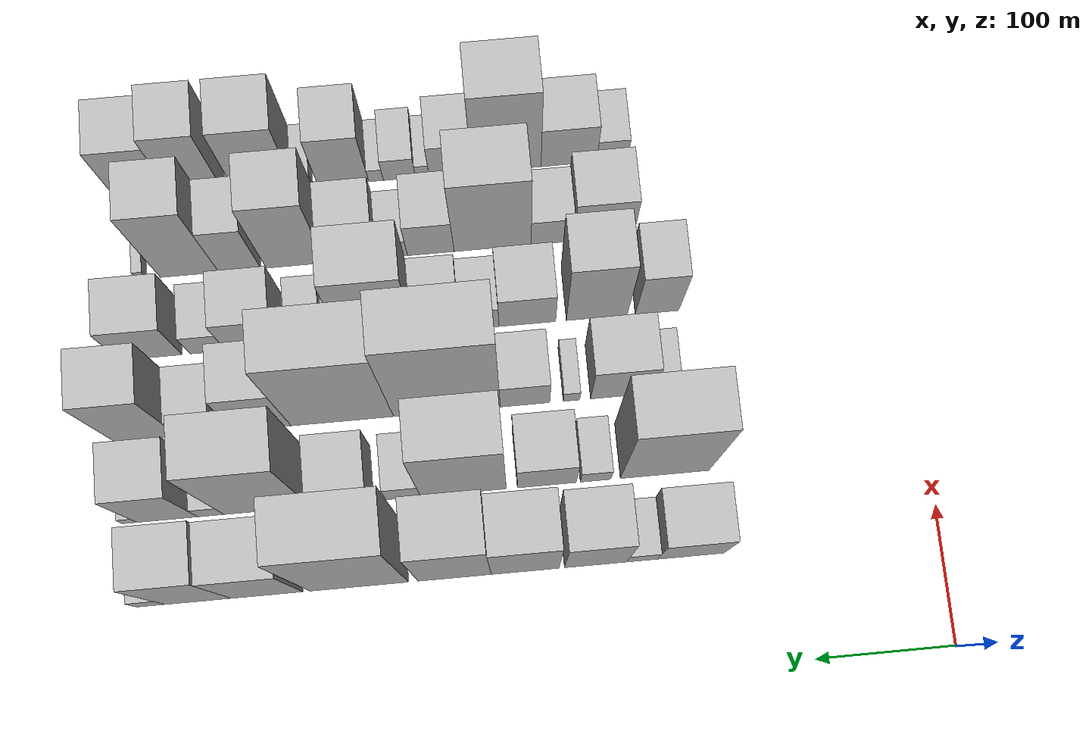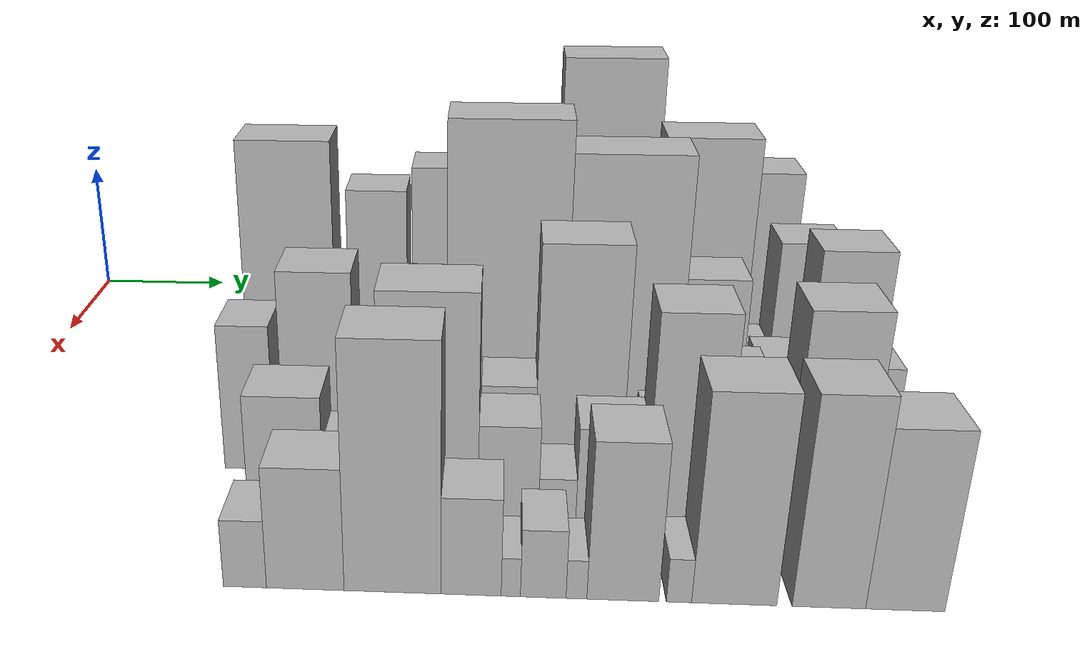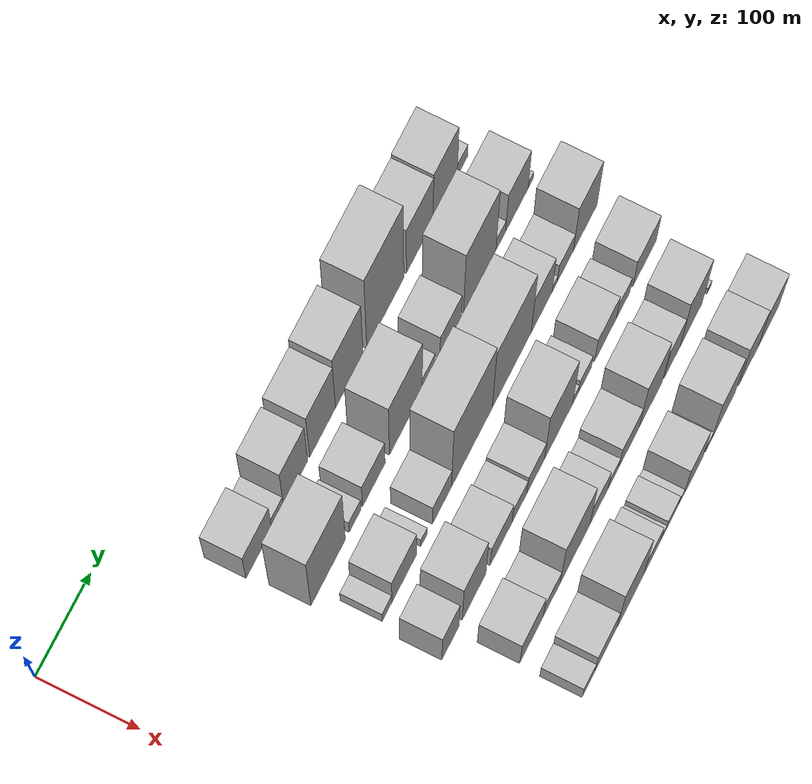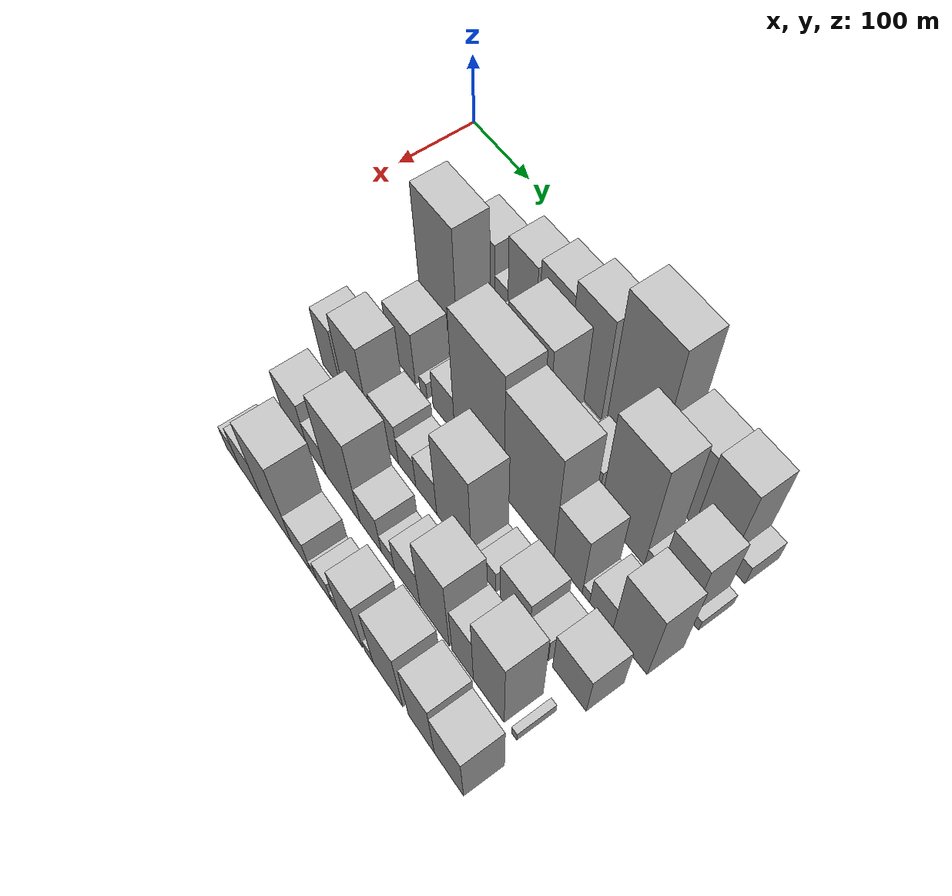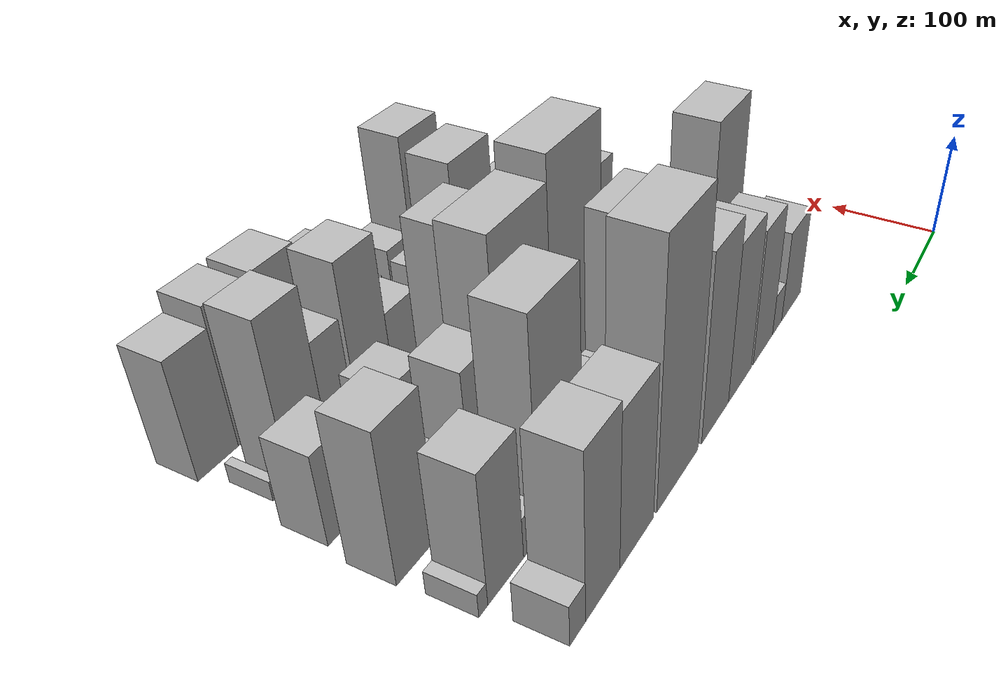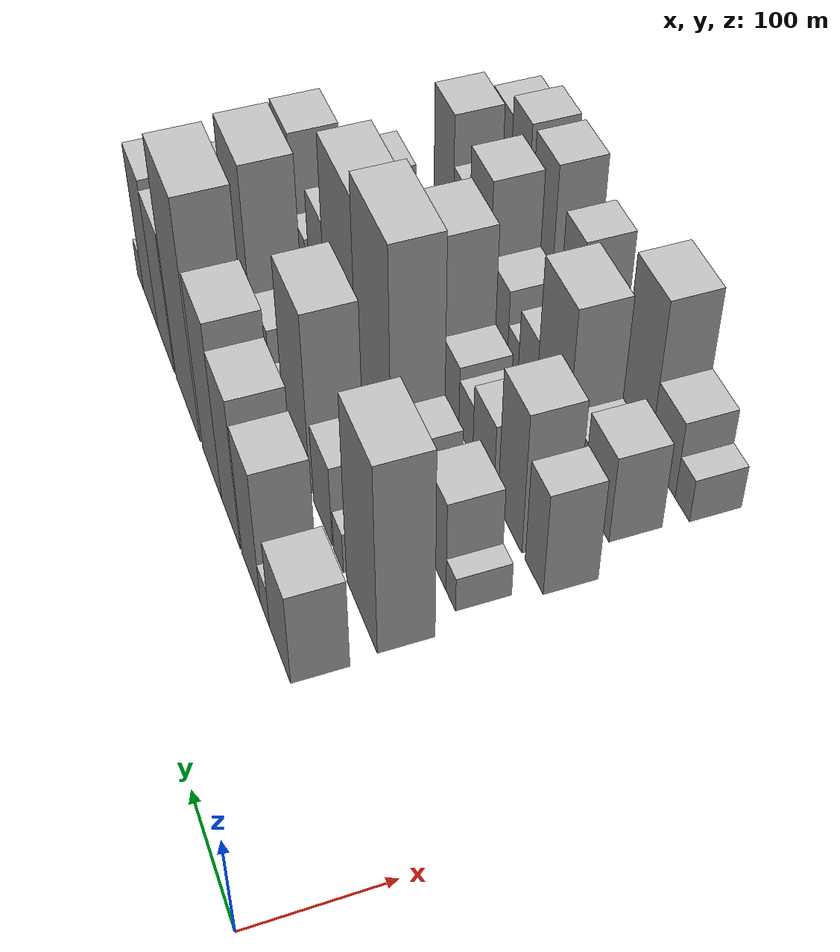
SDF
<sdf version="1.6">
 <world name="default">
  <model name="building_32">
   <static>1</static>
   <pose>100.0000 179.3233 0 0.000000 0.000000 0.000000</pose>
   <link name="link">
    <pose>0 0 43.50 0 0 0</pose>
    <collision name="collision"><geometry><box><size>40.0000 47.6907 87.0000</size></box></geometry></collision>
    <visual name="visual">
     <cast_shadows>0</cast_shadows>
     <geometry><box><size>40.0000 47.6907 87.0000</size></box></geometry>
     <material>
      <script>
       <uri>model://HANNAS_wall/materials/scripts</uri>
       <uri>model://HANNAS_wall/materials/textures</uri>
       <name>vrc/HANNAS_wall</name>
      </script>
     </material>
    </visual>
   </link>
  </model>
  <model name="building_33">
   <static>1</static>
   <pose>100.0000 214.2500 0 0.000000 0.000000 0.000000</pose>
   <link name="link">
    <pose>0 0 19.50 0 0 0</pose>
    <collision name="collision"><geometry><box><size>40.0000 22.1627 39.0000</size></box></geometry></collision>
    <visual name="visual">
     <cast_shadows>0</cast_shadows>
     <geometry><box><size>40.0000 22.1627 39.0000</size></box></geometry>
     <material>
      <script>
       <uri>model://HANNAS_wall/materials/scripts</uri>
       <uri>model://HANNAS_wall/materials/textures</uri>
       <name>vrc/HANNAS_wall</name>
      </script>
     </material>
    </visual>
   </link>
  </model>
  <model name="building_34">
   <static>1</static>
   <pose>100.0000 247.6200 0 0.000000 0.000000 0.000000</pose>
   <link name="link">
    <pose>0 0 63.00 0 0 0</pose>
    <collision name="collision"><geometry><box><size>40.0000 44.5773 126.0000</size></box></geometry></collision>
    <visual name="visual">
     <cast_shadows>0</cast_shadows>
     <geometry><box><size>40.0000 44.5773 126.0000</size></box></geometry>
     <material>
      <script>
       <uri>model://HANNAS_wall/materials/scripts</uri>
       <uri>model://HANNAS_wall/materials/textures</uri>
       <name>vrc/HANNAS_wall</name>
      </script>
     </material>
    </visual>
   </link>
  </model>
  <model name="building_35">
   <static>1</static>
   <pose>100.0000 298.0514 0 0.000000 0.000000 0.000000</pose>
   <link name="link">
    <pose>0 0 72.00 0 0 0</pose>
    <collision name="collision"><geometry><box><size>40.0000 48.2853 144.0000</size></box></geometry></collision>
    <visual name="visual">
     <cast_shadows>0</cast_shadows>
     <geometry><box><size>40.0000 48.2853 144.0000</size></box></geometry>
     <material>
      <script>
       <uri>model://HANNAS_wall/materials/scripts</uri>
       <uri>model://HANNAS_wall/materials/textures</uri>
       <name>vrc/HANNAS_wall</name>
      </script>
     </material>
    </visual>
   </link>
  </model>
  <model name="building_36">
   <static>1</static>
   <pose>100.0000 348.1888 0 0.000000 0.000000 0.000000</pose>
   <link name="link">
    <pose>0 0 84.00 0 0 0</pose>
    <collision name="collision"><geometry><box><size>40.0000 51.9896 168.0000</size></box></geometry></collision>
    <visual name="visual">
     <cast_shadows>0</cast_shadows>
     <geometry><box><size>40.0000 51.9896 168.0000</size></box></geometry>
     <material>
      <script>
       <uri>model://HANNAS_wall/materials/scripts</uri>
       <uri>model://HANNAS_wall/materials/textures</uri>
       <name>vrc/HANNAS_wall</name>
      </script>
     </material>
    </visual>
   </link>
  </model>
  <model name="building_37">
   <static>1</static>
   <pose>100.0000 416.3659 0 0.000000 0.000000 0.000000</pose>
   <link name="link">
    <pose>0 0 112.50 0 0 0</pose>
    <collision name="collision"><geometry><box><size>40.0000 70.3645 225.0000</size></box></geometry></collision>
    <visual name="visual">
     <cast_shadows>0</cast_shadows>
     <geometry><box><size>40.0000 70.3645 225.0000</size></box></geometry>
     <material>
      <script>
       <uri>model://HANNAS_wall/materials/scripts</uri>
       <uri>model://HANNAS_wall/materials/textures</uri>
       <name>vrc/HANNAS_wall</name>
      </script>
     </material>
    </visual>
   </link>
  </model>
  <model name="building_38">
   <static>1</static>
   <pose>100.0000 482.0148 0 0.000000 0.000000 0.000000</pose>
   <link name="link">
    <pose>0 0 67.50 0 0 0</pose>
    <collision name="collision"><geometry><box><size>40.0000 50.9333 135.0000</size></box></geometry></collision>
    <visual name="visual">
     <cast_shadows>0</cast_shadows>
     <geometry><box><size>40.0000 50.9333 135.0000</size></box></geometry>
     <material>
      <script>
       <uri>model://HANNAS_wall/materials/scripts</uri>
       <uri>model://HANNAS_wall/materials/textures</uri>
       <name>vrc/HANNAS_wall</name>
      </script>
     </material>
    </visual>
   </link>
  </model>
  <model name="building_39">
   <static>1</static>
   <pose>100.0000 530.8722 0 0.000000 0.000000 0.000000</pose>
   <link name="link">
    <pose>0 0 72.00 0 0 0</pose>
    <collision name="collision"><geometry><box><size>40.0000 46.7815 144.0000</size></box></geometry></collision>
    <visual name="visual">
     <cast_shadows>0</cast_shadows>
     <geometry><box><size>40.0000 46.7815 144.0000</size></box></geometry>
     <material>
      <script>
       <uri>model://HANNAS_wall/materials/scripts</uri>
       <uri>model://HANNAS_wall/materials/textures</uri>
       <name>vrc/HANNAS_wall</name>
      </script>
     </material>
    </visual>
   </link>
  </model>
  <model name="building_40">
   <static>1</static>
   <pose>100.0000 564.3408 0 0.000000 0.000000 0.000000</pose>
   <link name="link">
    <pose>0 0 18.00 0 0 0</pose>
    <collision name="collision"><geometry><box><size>40.0000 20.1557 36.0000</size></box></geometry></collision>
    <visual name="visual">
     <cast_shadows>0</cast_shadows>
     <geometry><box><size>40.0000 20.1557 36.0000</size></box></geometry>
     <material>
      <script>
       <uri>model://HANNAS_wall/materials/scripts</uri>
       <uri>model://HANNAS_wall/materials/textures</uri>
       <name>vrc/HANNAS_wall</name>
      </script>
     </material>
    </visual>
   </link>
  </model>
  <model name="building_81">
   <static>1</static>
   <pose>160.0000 191.4903 0 0.000000 0.000000 0.000000</pose>
   <link name="link">
    <pose>0 0 90.00 0 0 0</pose>
    <collision name="collision"><geometry><box><size>40.0000 64.2482 180.0000</size></box></geometry></collision>
    <visual name="visual">
     <cast_shadows>0</cast_shadows>
     <geometry><box><size>40.0000 64.2482 180.0000</size></box></geometry>
     <material>
      <script>
       <uri>model://HANNAS_wall/materials/scripts</uri>
       <uri>model://HANNAS_wall/materials/textures</uri>
       <name>vrc/HANNAS_wall</name>
      </script>
     </material>
    </visual>
   </link>
  </model>
  <model name="building_82">
   <static>1</static>
   <pose>160.0000 241.6156 0 0.000000 0.000000 0.000000</pose>
   <link name="link">
    <pose>0 0 19.50 0 0 0</pose>
    <collision name="collision"><geometry><box><size>40.0000 22.0024 39.0000</size></box></geometry></collision>
    <visual name="visual">
     <cast_shadows>0</cast_shadows>
     <geometry><box><size>40.0000 22.0024 39.0000</size></box></geometry>
     <material>
      <script>
       <uri>model://HANNAS_wall/materials/scripts</uri>
       <uri>model://HANNAS_wall/materials/textures</uri>
       <name>vrc/HANNAS_wall</name>
      </script>
     </material>
    </visual>
   </link>
  </model>
  <model name="building_83">
   <static>1</static>
   <pose>160.0000 276.8935 0 0.000000 0.000000 0.000000</pose>
   <link name="link">
    <pose>0 0 39.00 0 0 0</pose>
    <collision name="collision"><geometry><box><size>40.0000 42.5533 78.0000</size></box></geometry></collision>
    <visual name="visual">
     <cast_shadows>0</cast_shadows>
     <geometry><box><size>40.0000 42.5533 78.0000</size></box></geometry>
     <material>
      <script>
       <uri>model://HANNAS_wall/materials/scripts</uri>
       <uri>model://HANNAS_wall/materials/textures</uri>
       <name>vrc/HANNAS_wall</name>
      </script>
     </material>
    </visual>
   </link>
  </model>
  <model name="building_84">
   <static>1</static>
   <pose>160.0000 337.0586 0 0.000000 0.000000 0.000000</pose>
   <link name="link">
    <pose>0 0 85.50 0 0 0</pose>
    <collision name="collision"><geometry><box><size>40.0000 61.7770 171.0000</size></box></geometry></collision>
    <visual name="visual">
     <cast_shadows>0</cast_shadows>
     <geometry><box><size>40.0000 61.7770 171.0000</size></box></geometry>
     <material>
      <script>
       <uri>model://HANNAS_wall/materials/scripts</uri>
       <uri>model://HANNAS_wall/materials/textures</uri>
       <name>vrc/HANNAS_wall</name>
      </script>
     </material>
    </visual>
   </link>
  </model>
  <model name="building_85">
   <static>1</static>
   <pose>160.0000 380.3761 0 0.000000 0.000000 0.000000</pose>
   <link name="link">
    <pose>0 0 24.00 0 0 0</pose>
    <collision name="collision"><geometry><box><size>40.0000 24.8579 48.0000</size></box></geometry></collision>
    <visual name="visual">
     <cast_shadows>0</cast_shadows>
     <geometry><box><size>40.0000 24.8579 48.0000</size></box></geometry>
     <material>
      <script>
       <uri>model://HANNAS_wall/materials/scripts</uri>
       <uri>model://HANNAS_wall/materials/textures</uri>
       <name>vrc/HANNAS_wall</name>
      </script>
     </material>
    </visual>
   </link>
  </model>
  <model name="building_86">
   <static>1</static>
   <pose>160.0000 422.4481 0 0.000000 0.000000 0.000000</pose>
   <link name="link">
    <pose>0 0 36.00 0 0 0</pose>
    <collision name="collision"><geometry><box><size>40.0000 41.2861 72.0000</size></box></geometry></collision>
    <visual name="visual">
     <cast_shadows>0</cast_shadows>
     <geometry><box><size>40.0000 41.2861 72.0000</size></box></geometry>
     <material>
      <script>
       <uri>model://HANNAS_wall/materials/scripts</uri>
       <uri>model://HANNAS_wall/materials/textures</uri>
       <name>vrc/HANNAS_wall</name>
      </script>
     </material>
    </visual>
   </link>
  </model>
  <model name="building_87">
   <static>1</static>
   <pose>160.0000 478.3333 0 0.000000 0.000000 0.000000</pose>
   <link name="link">
    <pose>0 0 93.00 0 0 0</pose>
    <collision name="collision"><geometry><box><size>40.0000 62.4844 186.0000</size></box></geometry></collision>
    <visual name="visual">
     <cast_shadows>0</cast_shadows>
     <geometry><box><size>40.0000 62.4844 186.0000</size></box></geometry>
     <material>
      <script>
       <uri>model://HANNAS_wall/materials/scripts</uri>
       <uri>model://HANNAS_wall/materials/textures</uri>
       <name>vrc/HANNAS_wall</name>
      </script>
     </material>
    </visual>
   </link>
  </model>
  <model name="building_88">
   <static>1</static>
   <pose>160.0000 518.9085 0 0.000000 0.000000 0.000000</pose>
   <link name="link">
    <pose>0 0 18.00 0 0 0</pose>
    <collision name="collision"><geometry><box><size>40.0000 18.6660 36.0000</size></box></geometry></collision>
    <visual name="visual">
     <cast_shadows>0</cast_shadows>
     <geometry><box><size>40.0000 18.6660 36.0000</size></box></geometry>
     <material>
      <script>
       <uri>model://HANNAS_wall/materials/scripts</uri>
       <uri>model://HANNAS_wall/materials/textures</uri>
       <name>vrc/HANNAS_wall</name>
      </script>
     </material>
    </visual>
   </link>
  </model>
  <model name="building_89">
   <static>1</static>
   <pose>160.0000 550.0271 0 0.000000 0.000000 0.000000</pose>
   <link name="link">
    <pose>0 0 57.00 0 0 0</pose>
    <collision name="collision"><geometry><box><size>40.0000 43.5712 114.0000</size></box></geometry></collision>
    <visual name="visual">
     <cast_shadows>0</cast_shadows>
     <geometry><box><size>40.0000 43.5712 114.0000</size></box></geometry>
     <material>
      <script>
       <uri>model://HANNAS_wall/materials/scripts</uri>
       <uri>model://HANNAS_wall/materials/textures</uri>
       <name>vrc/HANNAS_wall</name>
      </script>
     </material>
    </visual>
   </link>
  </model>
  <model name="building_90">
   <static>1</static>
   <pose>160.0000 576.9958 0 0.000000 0.000000 0.000000</pose>
   <link name="link">
    <pose>0 0 10.50 0 0 0</pose>
    <collision name="collision"><geometry><box><size>40.0000 10.3662 21.0000</size></box></geometry></collision>
    <visual name="visual">
     <cast_shadows>0</cast_shadows>
     <geometry><box><size>40.0000 10.3662 21.0000</size></box></geometry>
     <material>
      <script>
       <uri>model://HANNAS_wall/materials/scripts</uri>
       <uri>model://HANNAS_wall/materials/textures</uri>
       <name>vrc/HANNAS_wall</name>
      </script>
     </material>
    </visual>
   </link>
  </model>
  <model name="building_135">
   <static>1</static>
   <pose>220.0000 183.8431 0 0.000000 0.000000 0.000000</pose>
   <link name="link">
    <pose>0 0 16.50 0 0 0</pose>
    <collision name="collision"><geometry><box><size>40.0000 18.2643 33.0000</size></box></geometry></collision>
    <visual name="visual">
     <cast_shadows>0</cast_shadows>
     <geometry><box><size>40.0000 18.2643 33.0000</size></box></geometry>
     <material>
      <script>
       <uri>model://HANNAS_wall/materials/scripts</uri>
       <uri>model://HANNAS_wall/materials/textures</uri>
       <name>vrc/HANNAS_wall</name>
      </script>
     </material>
    </visual>
   </link>
  </model>
  <model name="building_136">
   <static>1</static>
   <pose>220.0000 216.0808 0 0.000000 0.000000 0.000000</pose>
   <link name="link">
    <pose>0 0 43.50 0 0 0</pose>
    <collision name="collision"><geometry><box><size>40.0000 46.2111 87.0000</size></box></geometry></collision>
    <visual name="visual">
     <cast_shadows>0</cast_shadows>
     <geometry><box><size>40.0000 46.2111 87.0000</size></box></geometry>
     <material>
      <script>
       <uri>model://HANNAS_wall/materials/scripts</uri>
       <uri>model://HANNAS_wall/materials/textures</uri>
       <name>vrc/HANNAS_wall</name>
      </script>
     </material>
    </visual>
   </link>
  </model>
  <model name="building_137">
   <static>1</static>
   <pose>220.0000 253.1906 0 0.000000 0.000000 0.000000</pose>
   <link name="link">
    <pose>0 0 13.50 0 0 0</pose>
    <collision name="collision"><geometry><box><size>40.0000 12.0085 27.0000</size></box></geometry></collision>
    <visual name="visual">
     <cast_shadows>0</cast_shadows>
     <geometry><box><size>40.0000 12.0085 27.0000</size></box></geometry>
     <material>
      <script>
       <uri>model://HANNAS_wall/materials/scripts</uri>
       <uri>model://HANNAS_wall/materials/textures</uri>
       <name>vrc/HANNAS_wall</name>
      </script>
     </material>
    </visual>
   </link>
  </model>
  <model name="building_138">
   <static>1</static>
   <pose>220.0000 287.1813 0 0.000000 0.000000 0.000000</pose>
   <link name="link">
    <pose>0 0 33.00 0 0 0</pose>
    <collision name="collision"><geometry><box><size>40.0000 35.9730 66.0000</size></box></geometry></collision>
    <visual name="visual">
     <cast_shadows>0</cast_shadows>
     <geometry><box><size>40.0000 35.9730 66.0000</size></box></geometry>
     <material>
      <script>
       <uri>model://HANNAS_wall/materials/scripts</uri>
       <uri>model://HANNAS_wall/materials/textures</uri>
       <name>vrc/HANNAS_wall</name>
      </script>
     </material>
    </visual>
   </link>
  </model>
  <model name="building_139">
   <static>1</static>
   <pose>220.0000 344.0933 0 0.000000 0.000000 0.000000</pose>
   <link name="link">
    <pose>0 0 106.50 0 0 0</pose>
    <collision name="collision"><geometry><box><size>40.0000 77.8511 213.0000</size></box></geometry></collision>
    <visual name="visual">
     <cast_shadows>0</cast_shadows>
     <geometry><box><size>40.0000 77.8511 213.0000</size></box></geometry>
     <material>
      <script>
       <uri>model://HANNAS_wall/materials/scripts</uri>
       <uri>model://HANNAS_wall/materials/textures</uri>
       <name>vrc/HANNAS_wall</name>
      </script>
     </material>
    </visual>
   </link>
  </model>
  <model name="building_140">
   <static>1</static>
   <pose>220.0000 420.3339 0 0.000000 0.000000 0.000000</pose>
   <link name="link">
    <pose>0 0 96.00 0 0 0</pose>
    <collision name="collision"><geometry><box><size>40.0000 74.6301 192.0000</size></box></geometry></collision>
    <visual name="visual">
     <cast_shadows>0</cast_shadows>
     <geometry><box><size>40.0000 74.6301 192.0000</size></box></geometry>
     <material>
      <script>
       <uri>model://HANNAS_wall/materials/scripts</uri>
       <uri>model://HANNAS_wall/materials/textures</uri>
       <name>vrc/HANNAS_wall</name>
      </script>
     </material>
    </visual>
   </link>
  </model>
  <model name="building_141">
   <static>1</static>
   <pose>220.0000 477.7974 0 0.000000 0.000000 0.000000</pose>
   <link name="link">
    <pose>0 0 55.50 0 0 0</pose>
    <collision name="collision"><geometry><box><size>40.0000 40.2968 111.0000</size></box></geometry></collision>
    <visual name="visual">
     <cast_shadows>0</cast_shadows>
     <geometry><box><size>40.0000 40.2968 111.0000</size></box></geometry>
     <material>
      <script>
       <uri>model://HANNAS_wall/materials/scripts</uri>
       <uri>model://HANNAS_wall/materials/textures</uri>
       <name>vrc/HANNAS_wall</name>
      </script>
     </material>
    </visual>
   </link>
  </model>
  <model name="building_142">
   <static>1</static>
   <pose>220.0000 503.0956 0 0.000000 0.000000 0.000000</pose>
   <link name="link">
    <pose>0 0 10.50 0 0 0</pose>
    <collision name="collision"><geometry><box><size>40.0000 10.2998 21.0000</size></box></geometry></collision>
    <visual name="visual">
     <cast_shadows>0</cast_shadows>
     <geometry><box><size>40.0000 10.2998 21.0000</size></box></geometry>
     <material>
      <script>
       <uri>model://HANNAS_wall/materials/scripts</uri>
       <uri>model://HANNAS_wall/materials/textures</uri>
       <name>vrc/HANNAS_wall</name>
      </script>
     </material>
    </visual>
   </link>
  </model>
  <model name="building_143">
   <static>1</static>
   <pose>220.0000 523.9078 0 0.000000 0.000000 0.000000</pose>
   <link name="link">
    <pose>0 0 27.00 0 0 0</pose>
    <collision name="collision"><geometry><box><size>40.0000 31.3245 54.0000</size></box></geometry></collision>
    <visual name="visual">
     <cast_shadows>0</cast_shadows>
     <geometry><box><size>40.0000 31.3245 54.0000</size></box></geometry>
     <material>
      <script>
       <uri>model://HANNAS_wall/materials/scripts</uri>
       <uri>model://HANNAS_wall/materials/textures</uri>
       <name>vrc/HANNAS_wall</name>
      </script>
     </material>
    </visual>
   </link>
  </model>
  <model name="building_144">
   <static>1</static>
   <pose>220.0000 562.6455 0 0.000000 0.000000 0.000000</pose>
   <link name="link">
    <pose>0 0 66.00 0 0 0</pose>
    <collision name="collision"><geometry><box><size>40.0000 46.1511 132.0000</size></box></geometry></collision>
    <visual name="visual">
     <cast_shadows>0</cast_shadows>
     <geometry><box><size>40.0000 46.1511 132.0000</size></box></geometry>
     <material>
      <script>
       <uri>model://HANNAS_wall/materials/scripts</uri>
       <uri>model://HANNAS_wall/materials/textures</uri>
       <name>vrc/HANNAS_wall</name>
      </script>
     </material>
    </visual>
   </link>
  </model>
  <model name="building_186">
   <static>1</static>
   <pose>280.0000 183.9929 0 0.000000 0.000000 0.000000</pose>
   <link name="link">
    <pose>0 0 49.50 0 0 0</pose>
    <collision name="collision"><geometry><box><size>40.0000 32.1871 99.0000</size></box></geometry></collision>
    <visual name="visual">
     <cast_shadows>0</cast_shadows>
     <geometry><box><size>40.0000 32.1871 99.0000</size></box></geometry>
     <material>
      <script>
       <uri>model://HANNAS_wall/materials/scripts</uri>
       <uri>model://HANNAS_wall/materials/textures</uri>
       <name>vrc/HANNAS_wall</name>
      </script>
     </material>
    </visual>
   </link>
  </model>
  <model name="building_187">
   <static>1</static>
   <pose>280.0000 228.5905 0 0.000000 0.000000 0.000000</pose>
   <link name="link">
    <pose>0 0 67.50 0 0 0</pose>
    <collision name="collision"><geometry><box><size>40.0000 45.0080 135.0000</size></box></geometry></collision>
    <visual name="visual">
     <cast_shadows>0</cast_shadows>
     <geometry><box><size>40.0000 45.0080 135.0000</size></box></geometry>
     <material>
      <script>
       <uri>model://HANNAS_wall/materials/scripts</uri>
       <uri>model://HANNAS_wall/materials/textures</uri>
       <name>vrc/HANNAS_wall</name>
      </script>
     </material>
    </visual>
   </link>
  </model>
  <model name="building_188">
   <static>1</static>
   <pose>280.0000 279.9488 0 0.000000 0.000000 0.000000</pose>
   <link name="link">
    <pose>0 0 36.00 0 0 0</pose>
    <collision name="collision"><geometry><box><size>40.0000 41.7085 72.0000</size></box></geometry></collision>
    <visual name="visual">
     <cast_shadows>0</cast_shadows>
     <geometry><box><size>40.0000 41.7085 72.0000</size></box></geometry>
     <material>
      <script>
       <uri>model://HANNAS_wall/materials/scripts</uri>
       <uri>model://HANNAS_wall/materials/textures</uri>
       <name>vrc/HANNAS_wall</name>
      </script>
     </material>
    </visual>
   </link>
  </model>
  <model name="building_189">
   <static>1</static>
   <pose>280.0000 314.9411 0 0.000000 0.000000 0.000000</pose>
   <link name="link">
    <pose>0 0 25.50 0 0 0</pose>
    <collision name="collision"><geometry><box><size>40.0000 28.2761 51.0000</size></box></geometry></collision>
    <visual name="visual">
     <cast_shadows>0</cast_shadows>
     <geometry><box><size>40.0000 28.2761 51.0000</size></box></geometry>
     <material>
      <script>
       <uri>model://HANNAS_wall/materials/scripts</uri>
       <uri>model://HANNAS_wall/materials/textures</uri>
       <name>vrc/HANNAS_wall</name>
      </script>
     </material>
    </visual>
   </link>
  </model>
  <model name="building_190">
   <static>1</static>
   <pose>280.0000 345.9655 0 0.000000 0.000000 0.000000</pose>
   <link name="link">
    <pose>0 0 31.50 0 0 0</pose>
    <collision name="collision"><geometry><box><size>40.0000 33.7728 63.0000</size></box></geometry></collision>
    <visual name="visual">
     <cast_shadows>0</cast_shadows>
     <geometry><box><size>40.0000 33.7728 63.0000</size></box></geometry>
     <material>
      <script>
       <uri>model://HANNAS_wall/materials/scripts</uri>
       <uri>model://HANNAS_wall/materials/textures</uri>
       <name>vrc/HANNAS_wall</name>
      </script>
     </material>
    </visual>
   </link>
  </model>
  <model name="building_191">
   <static>1</static>
   <pose>280.0000 389.7515 0 0.000000 0.000000 0.000000</pose>
   <link name="link">
    <pose>0 0 78.00 0 0 0</pose>
    <collision name="collision"><geometry><box><size>40.0000 53.7992 156.0000</size></box></geometry></collision>
    <visual name="visual">
     <cast_shadows>0</cast_shadows>
     <geometry><box><size>40.0000 53.7992 156.0000</size></box></geometry>
     <material>
      <script>
       <uri>model://HANNAS_wall/materials/scripts</uri>
       <uri>model://HANNAS_wall/materials/textures</uri>
       <name>vrc/HANNAS_wall</name>
      </script>
     </material>
    </visual>
   </link>
  </model>
  <model name="building_192">
   <static>1</static>
   <pose>280.0000 422.5704 0 0.000000 0.000000 0.000000</pose>
   <link name="link">
    <pose>0 0 13.50 0 0 0</pose>
    <collision name="collision"><geometry><box><size>40.0000 11.8384 27.0000</size></box></geometry></collision>
    <visual name="visual">
     <cast_shadows>0</cast_shadows>
     <geometry><box><size>40.0000 11.8384 27.0000</size></box></geometry>
     <material>
      <script>
       <uri>model://HANNAS_wall/materials/scripts</uri>
       <uri>model://HANNAS_wall/materials/textures</uri>
       <name>vrc/HANNAS_wall</name>
      </script>
     </material>
    </visual>
   </link>
  </model>
  <model name="building_193">
   <static>1</static>
   <pose>280.0000 440.8804 0 0.000000 0.000000 0.000000</pose>
   <link name="link">
    <pose>0 0 21.00 0 0 0</pose>
    <collision name="collision"><geometry><box><size>40.0000 24.7818 42.0000</size></box></geometry></collision>
    <visual name="visual">
     <cast_shadows>0</cast_shadows>
     <geometry><box><size>40.0000 24.7818 42.0000</size></box></geometry>
     <material>
      <script>
       <uri>model://HANNAS_wall/materials/scripts</uri>
       <uri>model://HANNAS_wall/materials/textures</uri>
       <name>vrc/HANNAS_wall</name>
      </script>
     </material>
    </visual>
   </link>
  </model>
  <model name="building_194">
   <static>1</static>
   <pose>280.0000 480.5789 0 0.000000 0.000000 0.000000</pose>
   <link name="link">
    <pose>0 0 37.50 0 0 0</pose>
    <collision name="collision"><geometry><box><size>40.0000 42.6153 75.0000</size></box></geometry></collision>
    <visual name="visual">
     <cast_shadows>0</cast_shadows>
     <geometry><box><size>40.0000 42.6153 75.0000</size></box></geometry>
     <material>
      <script>
       <uri>model://HANNAS_wall/materials/scripts</uri>
       <uri>model://HANNAS_wall/materials/textures</uri>
       <name>vrc/HANNAS_wall</name>
      </script>
     </material>
    </visual>
   </link>
  </model>
  <model name="building_195">
   <static>1</static>
   <pose>280.0000 514.9547 0 0.000000 0.000000 0.000000</pose>
   <link name="link">
    <pose>0 0 24.00 0 0 0</pose>
    <collision name="collision"><geometry><box><size>40.0000 26.1362 48.0000</size></box></geometry></collision>
    <visual name="visual">
     <cast_shadows>0</cast_shadows>
     <geometry><box><size>40.0000 26.1362 48.0000</size></box></geometry>
     <material>
      <script>
       <uri>model://HANNAS_wall/materials/scripts</uri>
       <uri>model://HANNAS_wall/materials/textures</uri>
       <name>vrc/HANNAS_wall</name>
      </script>
     </material>
    </visual>
   </link>
  </model>
  <model name="building_196">
   <static>1</static>
   <pose>280.0000 556.8604 0 0.000000 0.000000 0.000000</pose>
   <link name="link">
    <pose>0 0 40.50 0 0 0</pose>
    <collision name="collision"><geometry><box><size>40.0000 45.6753 81.0000</size></box></geometry></collision>
    <visual name="visual">
     <cast_shadows>0</cast_shadows>
     <geometry><box><size>40.0000 45.6753 81.0000</size></box></geometry>
     <material>
      <script>
       <uri>model://HANNAS_wall/materials/scripts</uri>
       <uri>model://HANNAS_wall/materials/textures</uri>
       <name>vrc/HANNAS_wall</name>
      </script>
     </material>
    </visual>
   </link>
  </model>
  <model name="building_236">
   <static>1</static>
   <pose>340.0000 217.3896 0 0.000000 0.000000 0.000000</pose>
   <link name="link">
    <pose>0 0 42.00 0 0 0</pose>
    <collision name="collision"><geometry><box><size>40.0000 44.5408 84.0000</size></box></geometry></collision>
    <visual name="visual">
     <cast_shadows>0</cast_shadows>
     <geometry><box><size>40.0000 44.5408 84.0000</size></box></geometry>
     <material>
      <script>
       <uri>model://HANNAS_wall/materials/scripts</uri>
       <uri>model://HANNAS_wall/materials/textures</uri>
       <name>vrc/HANNAS_wall</name>
      </script>
     </material>
    </visual>
   </link>
  </model>
  <model name="building_237">
   <static>1</static>
   <pose>340.0000 255.6008 0 0.000000 0.000000 0.000000</pose>
   <link name="link">
    <pose>0 0 27.00 0 0 0</pose>
    <collision name="collision"><geometry><box><size>40.0000 31.8815 54.0000</size></box></geometry></collision>
    <visual name="visual">
     <cast_shadows>0</cast_shadows>
     <geometry><box><size>40.0000 31.8815 54.0000</size></box></geometry>
     <material>
      <script>
       <uri>model://HANNAS_wall/materials/scripts</uri>
       <uri>model://HANNAS_wall/materials/textures</uri>
       <name>vrc/HANNAS_wall</name>
      </script>
     </material>
    </visual>
   </link>
  </model>
  <model name="building_238">
   <static>1</static>
   <pose>340.0000 300.2467 0 0.000000 0.000000 0.000000</pose>
   <link name="link">
    <pose>0 0 75.00 0 0 0</pose>
    <collision name="collision"><geometry><box><size>40.0000 57.4104 150.0000</size></box></geometry></collision>
    <visual name="visual">
     <cast_shadows>0</cast_shadows>
     <geometry><box><size>40.0000 57.4104 150.0000</size></box></geometry>
     <material>
      <script>
       <uri>model://HANNAS_wall/materials/scripts</uri>
       <uri>model://HANNAS_wall/materials/textures</uri>
       <name>vrc/HANNAS_wall</name>
      </script>
     </material>
    </visual>
   </link>
  </model>
  <model name="building_239">
   <static>1</static>
   <pose>340.0000 346.3393 0 0.000000 0.000000 0.000000</pose>
   <link name="link">
    <pose>0 0 34.50 0 0 0</pose>
    <collision name="collision"><geometry><box><size>40.0000 34.7748 69.0000</size></box></geometry></collision>
    <visual name="visual">
     <cast_shadows>0</cast_shadows>
     <geometry><box><size>40.0000 34.7748 69.0000</size></box></geometry>
     <material>
      <script>
       <uri>model://HANNAS_wall/materials/scripts</uri>
       <uri>model://HANNAS_wall/materials/textures</uri>
       <name>vrc/HANNAS_wall</name>
      </script>
     </material>
    </visual>
   </link>
  </model>
  <model name="building_240">
   <static>1</static>
   <pose>340.0000 374.4345 0 0.000000 0.000000 0.000000</pose>
   <link name="link">
    <pose>0 0 18.00 0 0 0</pose>
    <collision name="collision"><geometry><box><size>40.0000 21.4154 36.0000</size></box></geometry></collision>
    <visual name="visual">
     <cast_shadows>0</cast_shadows>
     <geometry><box><size>40.0000 21.4154 36.0000</size></box></geometry>
     <material>
      <script>
       <uri>model://HANNAS_wall/materials/scripts</uri>
       <uri>model://HANNAS_wall/materials/textures</uri>
       <name>vrc/HANNAS_wall</name>
      </script>
     </material>
    </visual>
   </link>
  </model>
  <model name="building_241">
   <static>1</static>
   <pose>340.0000 404.9297 0 0.000000 0.000000 0.000000</pose>
   <link name="link">
    <pose>0 0 34.50 0 0 0</pose>
    <collision name="collision"><geometry><box><size>40.0000 39.5750 69.0000</size></box></geometry></collision>
    <visual name="visual">
     <cast_shadows>0</cast_shadows>
     <geometry><box><size>40.0000 39.5750 69.0000</size></box></geometry>
     <material>
      <script>
       <uri>model://HANNAS_wall/materials/scripts</uri>
       <uri>model://HANNAS_wall/materials/textures</uri>
       <name>vrc/HANNAS_wall</name>
      </script>
     </material>
    </visual>
   </link>
  </model>
  <model name="building_242">
   <static>1</static>
   <pose>340.0000 446.7631 0 0.000000 0.000000 0.000000</pose>
   <link name="link">
    <pose>0 0 70.50 0 0 0</pose>
    <collision name="collision"><geometry><box><size>40.0000 44.0918 141.0000</size></box></geometry></collision>
    <visual name="visual">
     <cast_shadows>0</cast_shadows>
     <geometry><box><size>40.0000 44.0918 141.0000</size></box></geometry>
     <material>
      <script>
       <uri>model://HANNAS_wall/materials/scripts</uri>
       <uri>model://HANNAS_wall/materials/textures</uri>
       <name>vrc/HANNAS_wall</name>
      </script>
     </material>
    </visual>
   </link>
  </model>
  <model name="building_243">
   <static>1</static>
   <pose>340.0000 488.3579 0 0.000000 0.000000 0.000000</pose>
   <link name="link">
    <pose>0 0 48.00 0 0 0</pose>
    <collision name="collision"><geometry><box><size>40.0000 31.0978 96.0000</size></box></geometry></collision>
    <visual name="visual">
     <cast_shadows>0</cast_shadows>
     <geometry><box><size>40.0000 31.0978 96.0000</size></box></geometry>
     <material>
      <script>
       <uri>model://HANNAS_wall/materials/scripts</uri>
       <uri>model://HANNAS_wall/materials/textures</uri>
       <name>vrc/HANNAS_wall</name>
      </script>
     </material>
    </visual>
   </link>
  </model>
  <model name="building_244">
   <static>1</static>
   <pose>340.0000 525.6491 0 0.000000 0.000000 0.000000</pose>
   <link name="link">
    <pose>0 0 72.00 0 0 0</pose>
    <collision name="collision"><geometry><box><size>40.0000 43.4846 144.0000</size></box></geometry></collision>
    <visual name="visual">
     <cast_shadows>0</cast_shadows>
     <geometry><box><size>40.0000 43.4846 144.0000</size></box></geometry>
     <material>
      <script>
       <uri>model://HANNAS_wall/materials/scripts</uri>
       <uri>model://HANNAS_wall/materials/textures</uri>
       <name>vrc/HANNAS_wall</name>
      </script>
     </material>
    </visual>
   </link>
  </model>
  <model name="building_245">
   <static>1</static>
   <pose>340.0000 561.1694 0 0.000000 0.000000 0.000000</pose>
   <link name="link">
    <pose>0 0 9.00 0 0 0</pose>
    <collision name="collision"><geometry><box><size>40.0000 7.5560 18.0000</size></box></geometry></collision>
    <visual name="visual">
     <cast_shadows>0</cast_shadows>
     <geometry><box><size>40.0000 7.5560 18.0000</size></box></geometry>
     <material>
      <script>
       <uri>model://HANNAS_wall/materials/scripts</uri>
       <uri>model://HANNAS_wall/materials/textures</uri>
       <name>vrc/HANNAS_wall</name>
      </script>
     </material>
    </visual>
   </link>
  </model>
  <model name="building_289">
   <static>1</static>
   <pose>400.0000 204.8551 0 0.000000 0.000000 0.000000</pose>
   <link name="link">
    <pose>0 0 21.00 0 0 0</pose>
    <collision name="collision"><geometry><box><size>40.0000 23.4554 42.0000</size></box></geometry></collision>
    <visual name="visual">
     <cast_shadows>0</cast_shadows>
     <geometry><box><size>40.0000 23.4554 42.0000</size></box></geometry>
     <material>
      <script>
       <uri>model://HANNAS_wall/materials/scripts</uri>
       <uri>model://HANNAS_wall/materials/textures</uri>
       <name>vrc/HANNAS_wall</name>
      </script>
     </material>
    </visual>
   </link>
  </model>
  <model name="building_290">
   <static>1</static>
   <pose>400.0000 237.6139 0 0.000000 0.000000 0.000000</pose>
   <link name="link">
    <pose>0 0 37.50 0 0 0</pose>
    <collision name="collision"><geometry><box><size>40.0000 42.0622 75.0000</size></box></geometry></collision>
    <visual name="visual">
     <cast_shadows>0</cast_shadows>
     <geometry><box><size>40.0000 42.0622 75.0000</size></box></geometry>
     <material>
      <script>
       <uri>model://HANNAS_wall/materials/scripts</uri>
       <uri>model://HANNAS_wall/materials/textures</uri>
       <name>vrc/HANNAS_wall</name>
      </script>
     </material>
    </visual>
   </link>
  </model>
  <model name="building_291">
   <static>1</static>
   <pose>400.0000 284.6914 0 0.000000 0.000000 0.000000</pose>
   <link name="link">
    <pose>0 0 75.00 0 0 0</pose>
    <collision name="collision"><geometry><box><size>40.0000 52.0929 150.0000</size></box></geometry></collision>
    <visual name="visual">
     <cast_shadows>0</cast_shadows>
     <geometry><box><size>40.0000 52.0929 150.0000</size></box></geometry>
     <material>
      <script>
       <uri>model://HANNAS_wall/materials/scripts</uri>
       <uri>model://HANNAS_wall/materials/textures</uri>
       <name>vrc/HANNAS_wall</name>
      </script>
     </material>
    </visual>
   </link>
  </model>
  <model name="building_292">
   <static>1</static>
   <pose>400.0000 326.8256 0 0.000000 0.000000 0.000000</pose>
   <link name="link">
    <pose>0 0 30.00 0 0 0</pose>
    <collision name="collision"><geometry><box><size>40.0000 32.1755 60.0000</size></box></geometry></collision>
    <visual name="visual">
     <cast_shadows>0</cast_shadows>
     <geometry><box><size>40.0000 32.1755 60.0000</size></box></geometry>
     <material>
      <script>
       <uri>model://HANNAS_wall/materials/scripts</uri>
       <uri>model://HANNAS_wall/materials/textures</uri>
       <name>vrc/HANNAS_wall</name>
      </script>
     </material>
    </visual>
   </link>
  </model>
  <model name="building_293">
   <static>1</static>
   <pose>400.0000 348.0325 0 0.000000 0.000000 0.000000</pose>
   <link name="link">
    <pose>0 0 12.00 0 0 0</pose>
    <collision name="collision"><geometry><box><size>40.0000 10.2382 24.0000</size></box></geometry></collision>
    <visual name="visual">
     <cast_shadows>0</cast_shadows>
     <geometry><box><size>40.0000 10.2382 24.0000</size></box></geometry>
     <material>
      <script>
       <uri>model://HANNAS_wall/materials/scripts</uri>
       <uri>model://HANNAS_wall/materials/textures</uri>
       <name>vrc/HANNAS_wall</name>
      </script>
     </material>
    </visual>
   </link>
  </model>
  <model name="building_294">
   <static>1</static>
   <pose>400.0000 365.2624 0 0.000000 0.000000 0.000000</pose>
   <link name="link">
    <pose>0 0 21.00 0 0 0</pose>
    <collision name="collision"><geometry><box><size>40.0000 24.2217 42.0000</size></box></geometry></collision>
    <visual name="visual">
     <cast_shadows>0</cast_shadows>
     <geometry><box><size>40.0000 24.2217 42.0000</size></box></geometry>
     <material>
      <script>
       <uri>model://HANNAS_wall/materials/scripts</uri>
       <uri>model://HANNAS_wall/materials/textures</uri>
       <name>vrc/HANNAS_wall</name>
      </script>
     </material>
    </visual>
   </link>
  </model>
  <model name="building_295">
   <static>1</static>
   <pose>400.0000 382.8856 0 0.000000 0.000000 0.000000</pose>
   <link name="link">
    <pose>0 0 12.00 0 0 0</pose>
    <collision name="collision"><geometry><box><size>40.0000 11.0247 24.0000</size></box></geometry></collision>
    <visual name="visual">
     <cast_shadows>0</cast_shadows>
     <geometry><box><size>40.0000 11.0247 24.0000</size></box></geometry>
     <material>
      <script>
       <uri>model://HANNAS_wall/materials/scripts</uri>
       <uri>model://HANNAS_wall/materials/textures</uri>
       <name>vrc/HANNAS_wall</name>
      </script>
     </material>
    </visual>
   </link>
  </model>
  <model name="building_296">
   <static>1</static>
   <pose>400.0000 407.3841 0 0.000000 0.000000 0.000000</pose>
   <link name="link">
    <pose>0 0 48.00 0 0 0</pose>
    <collision name="collision"><geometry><box><size>40.0000 37.9723 96.0000</size></box></geometry></collision>
    <visual name="visual">
     <cast_shadows>0</cast_shadows>
     <geometry><box><size>40.0000 37.9723 96.0000</size></box></geometry>
     <material>
      <script>
       <uri>model://HANNAS_wall/materials/scripts</uri>
       <uri>model://HANNAS_wall/materials/textures</uri>
       <name>vrc/HANNAS_wall</name>
      </script>
     </material>
    </visual>
   </link>
  </model>
  <model name="building_297">
   <static>1</static>
   <pose>400.0000 436.9791 0 0.000000 0.000000 0.000000</pose>
   <link name="link">
    <pose>0 0 13.50 0 0 0</pose>
    <collision name="collision"><geometry><box><size>40.0000 13.2177 27.0000</size></box></geometry></collision>
    <visual name="visual">
     <cast_shadows>0</cast_shadows>
     <geometry><box><size>40.0000 13.2177 27.0000</size></box></geometry>
     <material>
      <script>
       <uri>model://HANNAS_wall/materials/scripts</uri>
       <uri>model://HANNAS_wall/materials/textures</uri>
       <name>vrc/HANNAS_wall</name>
      </script>
     </material>
    </visual>
   </link>
  </model>
  <model name="building_298">
   <static>1</static>
   <pose>400.0000 465.8408 0 0.000000 0.000000 0.000000</pose>
   <link name="link">
    <pose>0 0 63.00 0 0 0</pose>
    <collision name="collision"><geometry><box><size>40.0000 44.5058 126.0000</size></box></geometry></collision>
    <visual name="visual">
     <cast_shadows>0</cast_shadows>
     <geometry><box><size>40.0000 44.5058 126.0000</size></box></geometry>
     <material>
      <script>
       <uri>model://HANNAS_wall/materials/scripts</uri>
       <uri>model://HANNAS_wall/materials/textures</uri>
       <name>vrc/HANNAS_wall</name>
      </script>
     </material>
    </visual>
   </link>
  </model>
  <model name="building_299">
   <static>1</static>
   <pose>400.0000 515.1380 0 0.000000 0.000000 0.000000</pose>
   <link name="link">
    <pose>0 0 63.00 0 0 0</pose>
    <collision name="collision"><geometry><box><size>40.0000 38.0885 126.0000</size></box></geometry></collision>
    <visual name="visual">
     <cast_shadows>0</cast_shadows>
     <geometry><box><size>40.0000 38.0885 126.0000</size></box></geometry>
     <material>
      <script>
       <uri>model://HANNAS_wall/materials/scripts</uri>
       <uri>model://HANNAS_wall/materials/textures</uri>
       <name>vrc/HANNAS_wall</name>
      </script>
     </material>
    </visual>
   </link>
  </model>
  <model name="building_300">
   <static>1</static>
   <pose>400.0000 554.6094 0 0.000000 0.000000 0.000000</pose>
   <link name="link">
    <pose>0 0 54.00 0 0 0</pose>
    <collision name="collision"><geometry><box><size>40.0000 40.8542 108.0000</size></box></geometry></collision>
    <visual name="visual">
     <cast_shadows>0</cast_shadows>
     <geometry><box><size>40.0000 40.8542 108.0000</size></box></geometry>
     <material>
      <script>
       <uri>model://HANNAS_wall/materials/scripts</uri>
       <uri>model://HANNAS_wall/materials/textures</uri>
       <name>vrc/HANNAS_wall</name>
      </script>
     </material>
    </visual>
   </link>
  </model>
 </world>
</sdf>
